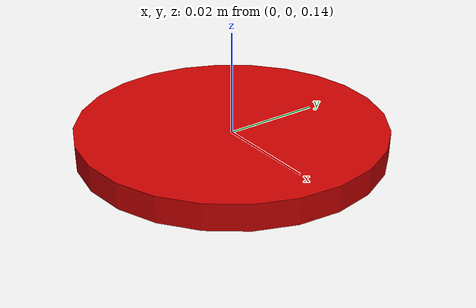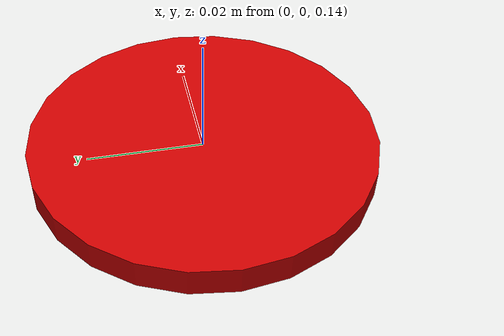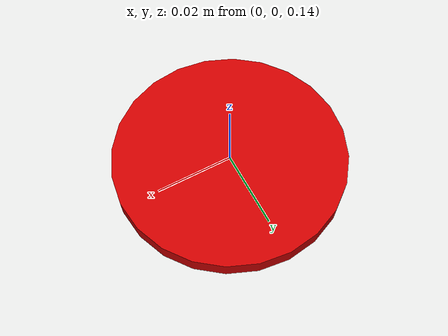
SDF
<?xml version="1.0" encoding="UTF-8"?>
<sdf version="1.9">
  <world name="x_marker_harmonic">

    <!-- ============================================================
         Physics: same parameters as Classic world (ODE, 250 Hz)
    ============================================================ -->
    <physics type="ode">
      <max_step_size>0.004</max_step_size>
      <real_time_factor>1.0</real_time_factor>
      <real_time_update_rate>250</real_time_update_rate>
    </physics>

    <plugin name="gz::sim::systems::Physics"
            filename="gz-sim-physics-system"/>
    <plugin name="gz::sim::systems::UserCommands"
            filename="gz-sim-user-commands-system"/>
    <plugin name="gz::sim::systems::SceneBroadcaster"
            filename="gz-sim-scene-broadcaster-system"/>
    <plugin name="gz::sim::systems::Contact"
            filename="gz-sim-contact-system"/>

    <!-- Sensor systems: handle IMU, baro, GPS, magnetometer, camera -->
    <plugin name="gz::sim::systems::Imu"
            filename="gz-sim-imu-system"/>
    <plugin name="gz::sim::systems::AirPressure"
            filename="gz-sim-air-pressure-system"/>
    <plugin name="gz::sim::systems::NavSat"
            filename="gz-sim-navsat-system"/>
    <plugin name="gz::sim::systems::Magnetometer"
            filename="gz-sim-magnetometer-system"/>
    <plugin name="gz::sim::systems::Sensors"
            filename="gz-sim-sensors-system">
      <render_engine>ogre2</render_engine>
    </plugin>

    <!-- Note: gz::sim::systems::DetachableJoint is a model-level plugin.
         It is defined inside x500_bombard/model.sdf on the drone model,
         not here at the world level. -->

    <!-- ============================================================
         GUI configuration (updated from Classic orbit camera)
    ============================================================ -->
    <gui fullscreen="false">
      <plugin filename="MinimalScene" name="3D View">
        <gz-gui>
          <title>3D View</title>
          <property type="bool" key="showTitleBar">false</property>
          <property type="string" key="state">docked</property>
        </gz-gui>
        <engine>ogre2</engine>
        <scene>scene</scene>
        <ambient_light>0.4 0.4 0.4</ambient_light>
        <background_color>0.7 0.7 0.7</background_color>
        <!-- Matches Classic GUI camera pose: x=15 y=6 z=5 pitch=0.7 yaw=2.35 -->
        <camera_pose>15 6 5 0 0.7 2.35</camera_pose>
        <camera_clip>
          <near>0.25</near>
          <far>25000</far>
        </camera_clip>
      </plugin>
      <plugin filename="EntityContextMenuPlugin" name="Entity context menu">
        <gz-gui>
          <property key="state" type="string">floating</property>
          <property key="width" type="double">5</property>
          <property key="height" type="double">5</property>
          <property key="showTitleBar" type="bool">false</property>
        </gz-gui>
      </plugin>
      <plugin filename="GzSceneManager" name="Scene Manager">
        <gz-gui>
          <property key="resizable" type="bool">false</property>
          <property key="width" type="double">5</property>
          <property key="height" type="double">5</property>
          <property key="state" type="string">floating</property>
          <property key="showTitleBar" type="bool">false</property>
        </gz-gui>
      </plugin>
      <plugin filename="InteractiveViewControl" name="Interactive view control">
        <gz-gui>
          <property key="resizable" type="bool">false</property>
          <property key="width" type="double">5</property>
          <property key="height" type="double">5</property>
          <property key="state" type="string">floating</property>
          <property key="showTitleBar" type="bool">false</property>
        </gz-gui>
      </plugin>
      <plugin name="World control" filename="WorldControl">
        <gz-gui>
          <title>World control</title>
          <property type="bool" key="showTitleBar">0</property>
          <property type="bool" key="resizable">0</property>
          <property type="double" key="height">72</property>
          <property type="double" key="width">121</property>
          <property type="string" key="state">floating</property>
          <anchors target="3D View">
            <line own="left" target="left"/>
            <line own="bottom" target="bottom"/>
          </anchors>
        </gz-gui>
        <play_pause>1</play_pause>
        <step>1</step>
        <start_paused>0</start_paused>
      </plugin>
      <plugin name="World stats" filename="WorldStats">
        <gz-gui>
          <title>World stats</title>
          <property type="bool" key="showTitleBar">0</property>
          <property type="bool" key="resizable">0</property>
          <property type="double" key="height">110</property>
          <property type="double" key="width">290</property>
          <property type="string" key="state">floating</property>
          <anchors target="3D View">
            <line own="right" target="right"/>
            <line own="bottom" target="bottom"/>
          </anchors>
        </gz-gui>
        <sim_time>1</sim_time>
        <real_time>1</real_time>
        <real_time_factor>1</real_time_factor>
        <iterations>1</iterations>
      </plugin>
      <plugin name="Entity tree" filename="EntityTree"/>
    </gui>

    <!-- ============================================================
         Environment
    ============================================================ -->
    <gravity>0 0 -9.8066</gravity>
    <magnetic_field>6.0e-6 2.3e-5 -4.2e-5</magnetic_field>
    <atmosphere type="adiabatic"/>

    <!-- GPS origin: same as PX4 default (Zurich) -->
    <spherical_coordinates>
      <surface_model>EARTH_WGS84</surface_model>
      <world_frame_orientation>ENU</world_frame_orientation>
      <latitude_deg>47.397971057728974</latitude_deg>
      <longitude_deg>8.546163739800146</longitude_deg>
      <elevation>0</elevation>
    </spherical_coordinates>

    <!-- Scene settings -->
    <scene>
      <grid>false</grid>
      <ambient>0.4 0.4 0.4 1</ambient>
      <background>0.7 0.7 0.7 1</background>
      <shadows>true</shadows>
    </scene>

    <light name="sunUTC" type="directional">
      <pose>0 0 500 0 0 0</pose>
      <cast_shadows>true</cast_shadows>
      <intensity>1</intensity>
      <direction>0.001 0.625 -0.78</direction>
      <diffuse>0.904 0.904 0.904 1</diffuse>
      <specular>0.271 0.271 0.271 1</specular>
      <attenuation>
        <range>2000</range>
        <linear>0</linear>
        <constant>1</constant>
        <quadratic>0</quadratic>
      </attenuation>
    </light>

    <model name="ground_plane">
      <static>true</static>
      <link name="link">
        <collision name="collision">
          <geometry>
            <plane>
              <normal>0 0 1</normal>
              <size>1 1</size>
            </plane>
          </geometry>
        </collision>
        <visual name="visual">
          <geometry>
            <plane>
              <normal>0 0 1</normal>
              <size>200 200</size>
            </plane>
          </geometry>
          <material>
            <ambient>0.8 0.8 0.8 1</ambient>
            <diffuse>0.8 0.8 0.8 1</diffuse>
            <specular>0.8 0.8 0.8 1</specular>
          </material>
        </visual>
      </link>
    </model>

    <include>
      <uri>model://x_marker</uri>
      <name>x_marker_2</name>
      <pose>11 10 0 0 0 0</pose>
    </include>

    <include>
      <uri>model://payload_cylinder</uri>
      <name>payload_cylinder</name>
      <pose>0 0 0.14 0 0 0</pose>
    </include>

  </world>
</sdf>

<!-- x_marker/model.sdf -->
<sdf version="1.9">
  <model name="x_marker">
    <static>true</static>
    <link name="link">
      <pose>0 0 0.001 0 0 0</pose>

      <collision name="collision">
        <geometry>
          <box>
            <size>1.5 1.5 0.002</size>
          </box>
        </geometry>
      </collision>

      <!-- Single PBR-textured plane using x_marker.png (ogre2 compatible) -->
      <visual name="marker">
        <pose>0 0 0 0 0 0</pose>
        <geometry>
          <box>
            <size>1.5 1.5 0.001</size>
          </box>
        </geometry>
        <material>
          <diffuse>1 1 1 1</diffuse>
          <specular>0 0 0 1</specular>
          <pbr>
            <metal>
              <albedo_map>model://x_marker/materials/textures/x_marker.png</albedo_map>
              <metalness>0.0</metalness>
              <roughness>0.8</roughness>
            </metal>
          </pbr>
        </material>
      </visual>

    </link>
  </model>
</sdf>

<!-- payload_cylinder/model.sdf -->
<sdf version="1.9">
  <model name="payload_cylinder">

    <link name="payload_link">
      <self_collide>true</self_collide>
      <inertial>
        <mass>0.1</mass>
        <inertia>
          <ixx>0.0001</ixx><ixy>0</ixy><ixz>0</ixz>
          <iyy>0.0001</iyy><iyz>0</iyz>
          <izz>0.0001</izz>
        </inertia>
      </inertial>

      <visual name="payload_visual">
        <geometry>
           <cylinder><radius>0.03</radius><length>0.005</length></cylinder>
        </geometry>
        <material>
          <ambient>0.8 0.0 0.0 1</ambient>
          <diffuse>0.8 0.0 0.0 1</diffuse>
        </material>
      </visual>

      <collision name="payload_collision">
        <geometry>
           <cylinder><radius>0.029</radius><length>0.005</length></cylinder>
        </geometry>
        <surface>
          <contact>
            <ode>
              <kp>100000.0</kp>
              <kd>100.0</kd>
              <max_vel>0.0</max_vel>
              <min_depth>0.002</min_depth>
            </ode>
          </contact>
        </surface>
      </collision>
    </link>

    <plugin name="gz::sim::systems::OdometryPublisher"
            filename="gz-sim-odometry-publisher-system">
      <odom_frame>world</odom_frame>
      <robot_base_frame>payload_cylinder</robot_base_frame>
      <odom_publish_frequency>10</odom_publish_frequency>
    </plugin>
  </model>
</sdf>
